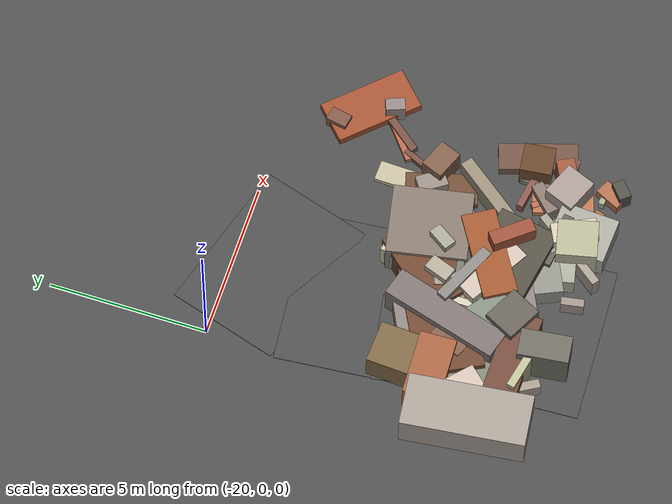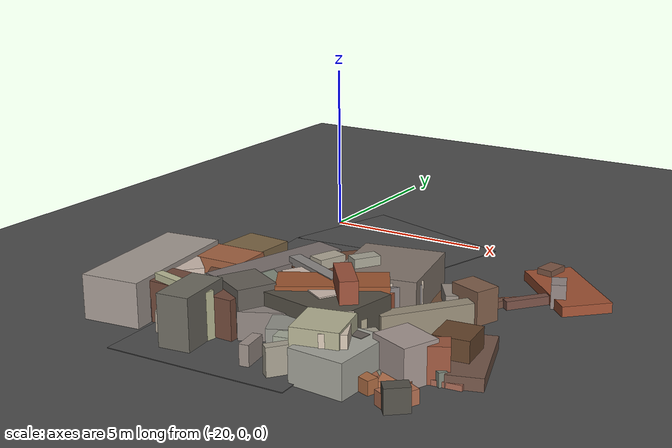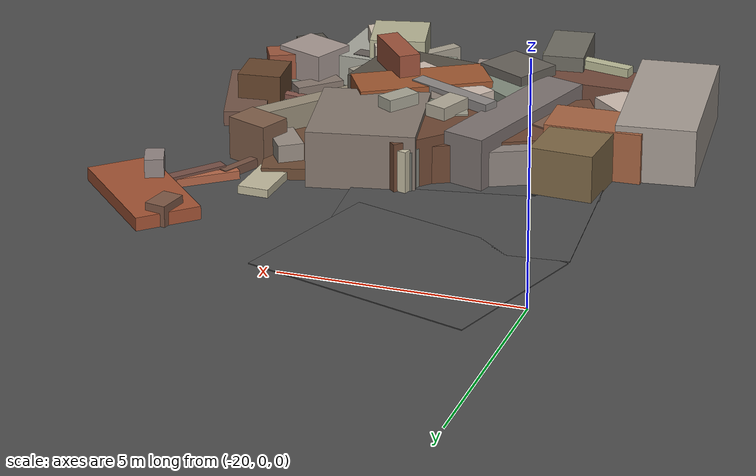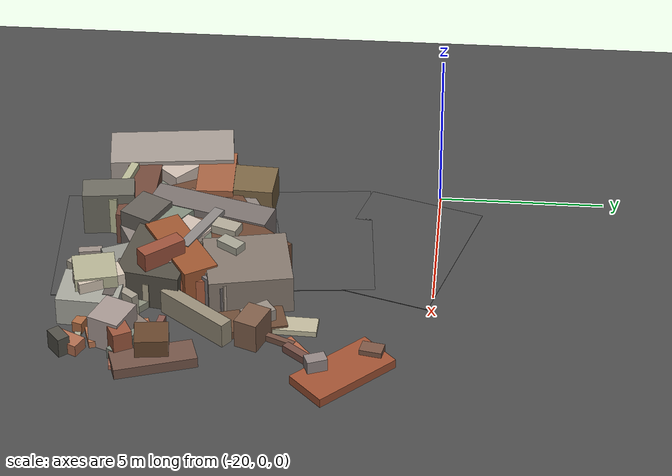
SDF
<sdf version="1.6">
 <world name="navitas_arena">
  <model name="ground_plane">
   <static>true</static>
   <link name="link">
    <collision name="collision">
     <geometry><plane><normal>0 0 1</normal><size>400 400</size></plane></geometry>
     <surface><friction><ode><mu>0.800</mu><mu2>0.800</mu2></ode></friction></surface>
    </collision>
    <visual name="visual">
     <cast_shadows>false</cast_shadows>
     <geometry><plane><normal>0 0 1</normal><size>400 400</size></plane></geometry>
     <material>
      <specular>0.04 0.04 0.04 1</specular>
      <script>
       <uri>file://media/materials/scripts/navitas_asphalt.material</uri>
       <name>Navitas/RealArenaAsphalt</name>
      </script>
     </material>
    </visual>
   </link>
  </model>
  <model name="road_orta_1_7">
   <static>true</static>
   <pose>-16.860 -9.460 0.040 0 0 1.612</pose>
   <link name="link">
    <collision name="col"><geometry><box><size>3.822 5.000 0.020</size></box></geometry></collision>
    <visual name="vis">
     <geometry><box><size>3.822 5.000 0.020</size></box></geometry>
     <material>
      <specular>0.04 0.04 0.04 1</specular>
      <script>
       <uri>file://media/materials/scripts/navitas_asphalt.material</uri>
       <name>Navitas/RealArenaAsphalt</name>
      </script>
     </material>
    </visual>
   </link>
  </model>
  <model name="road_orta_1_8">
   <static>true</static>
   <pose>-17.165 -6.600 0.040 0 0 1.744</pose>
   <link name="link">
    <collision name="col"><geometry><box><size>3.742 5.000 0.020</size></box></geometry></collision>
    <visual name="vis">
     <geometry><box><size>3.742 5.000 0.020</size></box></geometry>
     <material>
      <specular>0.04 0.04 0.04 1</specular>
      <script>
       <uri>file://media/materials/scripts/navitas_asphalt.material</uri>
       <name>Navitas/RealArenaAsphalt</name>
      </script>
     </material>
    </visual>
   </link>
  </model>
  <model name="road_orta_1_9">
   <static>true</static>
   <pose>-17.538 -3.800 0.040 0 0 1.662</pose>
   <link name="link">
    <collision name="col"><geometry><box><size>3.712 5.000 0.020</size></box></geometry></collision>
    <visual name="vis">
     <geometry><box><size>3.712 5.000 0.020</size></box></geometry>
     <material>
      <specular>0.04 0.04 0.04 1</specular>
      <script>
       <uri>file://media/materials/scripts/navitas_asphalt.material</uri>
       <name>Navitas/RealArenaAsphalt</name>
      </script>
     </material>
    </visual>
   </link>
  </model>
  <model name="road_orta_1_10">
   <static>true</static>
   <pose>-17.275 -1.117 0.040 0 0 1.275</pose>
   <link name="link">
    <collision name="col"><geometry><box><size>3.584 5.000 0.020</size></box></geometry></collision>
    <visual name="vis">
     <geometry><box><size>3.584 5.000 0.020</size></box></geometry>
     <material>
      <specular>0.04 0.04 0.04 1</specular>
      <script>
       <uri>file://media/materials/scripts/navitas_asphalt.material</uri>
       <name>Navitas/RealArenaAsphalt</name>
      </script>
     </material>
    </visual>
   </link>
  </model>
  <model name="blk_orta_1_0_0">
   <static>true</static>
   <pose>-17.702 -7.231 0.000 0 0 0</pose>
   <link name="link">
    <collision name="col_0">
     <pose>1.902 -0.352 0.601 0.000 0.000 -0.529</pose>
     <geometry><box><size>2.209 1.005 1.203</size></box></geometry>
    </collision>
    <visual name="vis_0">
     <pose>1.902 -0.352 0.601 0.000 0.000 -0.529</pose>
     <geometry><box><size>2.209 1.005 1.203</size></box></geometry>
     <material>
      <ambient>0.75 0.68 0.64 1</ambient>
      <diffuse>0.81 0.74 0.69 1</diffuse>
      <specular>0.05 0.05 0.045 1</specular>
     </material>
    </visual>
    <collision name="col_1">
     <pose>0.239 -0.017 0.309 0.000 0.000 1.440</pose>
     <geometry><box><size>0.358 0.312 0.618</size></box></geometry>
    </collision>
    <visual name="vis_1">
     <pose>0.239 -0.017 0.309 0.000 0.000 1.440</pose>
     <geometry><box><size>0.358 0.312 0.618</size></box></geometry>
     <material>
      <ambient>0.63 0.40 0.30 1</ambient>
      <diffuse>0.68 0.43 0.32 1</diffuse>
      <specular>0.05 0.05 0.045 1</specular>
     </material>
    </visual>
    <collision name="col_2">
     <pose>0.584 -0.871 0.565 0.000 0.000 -0.632</pose>
     <geometry><box><size>1.253 0.995 1.130</size></box></geometry>
    </collision>
    <visual name="vis_2">
     <pose>0.584 -0.871 0.565 0.000 0.000 -0.632</pose>
     <geometry><box><size>1.253 0.995 1.130</size></box></geometry>
     <material>
      <ambient>0.48 0.51 0.46 1</ambient>
      <diffuse>0.51 0.55 0.49 1</diffuse>
      <specular>0.05 0.05 0.045 1</specular>
     </material>
    </visual>
    <collision name="col_3">
     <pose>1.136 0.771 0.558 0.000 0.000 1.915</pose>
     <geometry><box><size>0.677 0.350 1.116</size></box></geometry>
    </collision>
    <visual name="vis_3">
     <pose>1.136 0.771 0.558 0.000 0.000 1.915</pose>
     <geometry><box><size>0.677 0.350 1.116</size></box></geometry>
     <material>
      <ambient>0.56 0.56 0.50 1</ambient>
      <diffuse>0.61 0.60 0.54 1</diffuse>
      <specular>0.05 0.05 0.045 1</specular>
     </material>
    </visual>
    <collision name="col_4">
     <pose>-1.515 1.155 0.526 0.000 0.000 1.513</pose>
     <geometry><box><size>2.084 1.339 1.051</size></box></geometry>
    </collision>
    <visual name="vis_4">
     <pose>-1.515 1.155 0.526 0.000 0.000 1.513</pose>
     <geometry><box><size>2.084 1.339 1.051</size></box></geometry>
     <material>
      <ambient>0.45 0.37 0.25 1</ambient>
      <diffuse>0.49 0.40 0.27 1</diffuse>
      <specular>0.05 0.05 0.045 1</specular>
     </material>
    </visual>
    <collision name="col_5">
     <pose>0.676 -0.555 0.448 0.000 0.000 1.570</pose>
     <geometry><box><size>2.831 0.231 0.897</size></box></geometry>
    </collision>
    <visual name="vis_5">
     <pose>0.676 -0.555 0.448 0.000 0.000 1.570</pose>
     <geometry><box><size>2.831 0.231 0.897</size></box></geometry>
     <material>
      <ambient>0.75 0.73 0.66 1</ambient>
      <diffuse>0.81 0.79 0.71 1</diffuse>
      <specular>0.05 0.05 0.045 1</specular>
     </material>
    </visual>
    <collision name="col_6">
     <pose>0.834 1.425 0.448 0.000 0.000 1.750</pose>
     <geometry><box><size>1.007 1.122 0.895</size></box></geometry>
    </collision>
    <visual name="vis_6">
     <pose>0.834 1.425 0.448 0.000 0.000 1.750</pose>
     <geometry><box><size>1.007 1.122 0.895</size></box></geometry>
     <material>
      <ambient>0.54 0.51 0.48 1</ambient>
      <diffuse>0.58 0.55 0.52 1</diffuse>
      <specular>0.05 0.05 0.045 1</specular>
     </material>
    </visual>
    <collision name="col_7">
     <pose>-1.273 0.865 0.290 0.000 0.000 -0.264</pose>
     <geometry><box><size>0.560 0.477 0.581</size></box></geometry>
    </collision>
    <visual name="vis_7">
     <pose>-1.273 0.865 0.290 0.000 0.000 -0.264</pose>
     <geometry><box><size>0.560 0.477 0.581</size></box></geometry>
     <material>
      <ambient>0.44 0.45 0.40 1</ambient>
      <diffuse>0.48 0.48 0.43 1</diffuse>
      <specular>0.05 0.05 0.045 1</specular>
     </material>
    </visual>
    <collision name="col_8">
     <pose>-1.736 0.360 0.541 0.000 0.000 0.033</pose>
     <geometry><box><size>2.044 1.137 1.082</size></box></geometry>
    </collision>
    <visual name="vis_8">
     <pose>-1.736 0.360 0.541 0.000 0.000 0.033</pose>
     <geometry><box><size>2.044 1.137 1.082</size></box></geometry>
     <material>
      <ambient>0.60 0.36 0.24 1</ambient>
      <diffuse>0.65 0.39 0.26 1</diffuse>
      <specular>0.05 0.05 0.045 1</specular>
     </material>
    </visual>
    <collision name="col_9">
     <pose>1.491 -0.687 0.588 0.000 0.000 -0.025</pose>
     <geometry><box><size>0.366 0.255 1.176</size></box></geometry>
    </collision>
    <visual name="vis_9">
     <pose>1.491 -0.687 0.588 0.000 0.000 -0.025</pose>
     <geometry><box><size>0.366 0.255 1.176</size></box></geometry>
     <material>
      <ambient>0.72 0.71 0.60 1</ambient>
      <diffuse>0.77 0.76 0.65 1</diffuse>
      <specular>0.05 0.05 0.045 1</specular>
     </material>
    </visual>
   </link>
  </model>
  <model name="blk_orta_1_0_1">
   <static>true</static>
   <pose>-14.191 -9.171 0.000 0 0 0</pose>
   <link name="link">
    <collision name="col_0">
     <pose>-0.129 0.159 0.414 0.000 0.000 1.249</pose>
     <geometry><box><size>1.631 0.301 0.828</size></box></geometry>
    </collision>
    <visual name="vis_0">
     <pose>-0.129 0.159 0.414 0.000 0.000 1.249</pose>
     <geometry><box><size>1.631 0.301 0.828</size></box></geometry>
     <material>
      <ambient>0.66 0.62 0.53 1</ambient>
      <diffuse>0.71 0.67 0.57 1</diffuse>
      <specular>0.05 0.05 0.045 1</specular>
     </material>
    </visual>
    <collision name="col_1">
     <pose>-0.093 -0.523 0.391 0.000 0.000 0.912</pose>
     <geometry><box><size>2.744 0.262 0.781</size></box></geometry>
    </collision>
    <visual name="vis_1">
     <pose>-0.093 -0.523 0.391 0.000 0.000 0.912</pose>
     <geometry><box><size>2.744 0.262 0.781</size></box></geometry>
     <material>
      <ambient>0.60 0.57 0.52 1</ambient>
      <diffuse>0.65 0.62 0.56 1</diffuse>
      <specular>0.05 0.05 0.045 1</specular>
     </material>
    </visual>
    <collision name="col_2">
     <pose>0.017 -0.090 0.455 0.000 0.000 3.004</pose>
     <geometry><box><size>1.782 0.326 0.910</size></box></geometry>
    </collision>
    <visual name="vis_2">
     <pose>0.017 -0.090 0.455 0.000 0.000 3.004</pose>
     <geometry><box><size>1.782 0.326 0.910</size></box></geometry>
     <material>
      <ambient>0.37 0.34 0.33 1</ambient>
      <diffuse>0.40 0.37 0.35 1</diffuse>
      <specular>0.05 0.05 0.045 1</specular>
     </material>
    </visual>
    <collision name="col_3">
     <pose>0.327 -0.537 0.621 0.000 0.000 2.023</pose>
     <geometry><box><size>1.399 0.663 1.242</size></box></geometry>
    </collision>
    <visual name="vis_3">
     <pose>0.327 -0.537 0.621 0.000 0.000 2.023</pose>
     <geometry><box><size>1.399 0.663 1.242</size></box></geometry>
     <material>
      <ambient>0.77 0.72 0.65 1</ambient>
      <diffuse>0.83 0.77 0.70 1</diffuse>
      <specular>0.05 0.05 0.045 1</specular>
     </material>
    </visual>
    <collision name="col_4">
     <pose>0.522 -0.759 0.448 0.000 0.000 1.510</pose>
     <geometry><box><size>1.819 1.485 0.896</size></box></geometry>
    </collision>
    <visual name="vis_4">
     <pose>0.522 -0.759 0.448 0.000 0.000 1.510</pose>
     <geometry><box><size>1.819 1.485 0.896</size></box></geometry>
     <material>
      <ambient>0.60 0.60 0.57 1</ambient>
      <diffuse>0.65 0.65 0.61 1</diffuse>
      <specular>0.05 0.05 0.045 1</specular>
     </material>
    </visual>
    <collision name="col_5">
     <pose>-0.719 -0.065 0.373 0.000 0.000 1.782</pose>
     <geometry><box><size>1.632 1.206 0.747</size></box></geometry>
    </collision>
    <visual name="vis_5">
     <pose>-0.719 -0.065 0.373 0.000 0.000 1.782</pose>
     <geometry><box><size>1.632 1.206 0.747</size></box></geometry>
     <material>
      <ambient>0.60 0.62 0.56 1</ambient>
      <diffuse>0.65 0.67 0.60 1</diffuse>
      <specular>0.05 0.05 0.045 1</specular>
     </material>
    </visual>
    <collision name="col_6">
     <pose>0.074 -0.698 0.654 0.000 0.000 1.799</pose>
     <geometry><box><size>1.248 1.201 1.307</size></box></geometry>
    </collision>
    <visual name="vis_6">
     <pose>0.074 -0.698 0.654 0.000 0.000 1.799</pose>
     <geometry><box><size>1.248 1.201 1.307</size></box></geometry>
     <material>
      <ambient>0.66 0.65 0.54 1</ambient>
      <diffuse>0.71 0.70 0.58 1</diffuse>
      <specular>0.05 0.05 0.045 1</specular>
     </material>
    </visual>
    <collision name="col_7">
     <pose>-0.320 -0.185 0.455 0.000 0.000 0.828</pose>
     <geometry><box><size>0.215 0.387 0.910</size></box></geometry>
    </collision>
    <visual name="vis_7">
     <pose>-0.320 -0.185 0.455 0.000 0.000 0.828</pose>
     <geometry><box><size>0.215 0.387 0.910</size></box></geometry>
     <material>
      <ambient>0.56 0.52 0.46 1</ambient>
      <diffuse>0.60 0.56 0.50 1</diffuse>
      <specular>0.05 0.05 0.045 1</specular>
     </material>
    </visual>
   </link>
  </model>
  <model name="blk_orta_1_0_2">
   <static>true</static>
   <pose>-19.351 -8.462 0.000 0 0 0</pose>
   <link name="link">
    <collision name="col_0">
     <pose>0.918 -1.126 0.651 0.000 0.000 2.930</pose>
     <geometry><box><size>2.033 0.245 1.302</size></box></geometry>
    </collision>
    <visual name="vis_0">
     <pose>0.918 -1.126 0.651 0.000 0.000 2.930</pose>
     <geometry><box><size>2.033 0.245 1.302</size></box></geometry>
     <material>
      <ambient>0.67 0.67 0.55 1</ambient>
      <diffuse>0.73 0.73 0.59 1</diffuse>
      <specular>0.05 0.05 0.045 1</specular>
     </material>
    </visual>
    <collision name="col_1">
     <pose>-0.184 -0.332 0.304 0.000 0.000 2.102</pose>
     <geometry><box><size>3.076 0.279 0.608</size></box></geometry>
    </collision>
    <visual name="vis_1">
     <pose>-0.184 -0.332 0.304 0.000 0.000 2.102</pose>
     <geometry><box><size>3.076 0.279 0.608</size></box></geometry>
     <material>
      <ambient>0.59 0.56 0.50 1</ambient>
      <diffuse>0.64 0.60 0.54 1</diffuse>
      <specular>0.05 0.05 0.045 1</specular>
     </material>
    </visual>
    <collision name="col_2">
     <pose>-0.480 0.840 0.437 0.000 0.000 1.129</pose>
     <geometry><box><size>1.689 0.182 0.874</size></box></geometry>
    </collision>
    <visual name="vis_2">
     <pose>-0.480 0.840 0.437 0.000 0.000 1.129</pose>
     <geometry><box><size>1.689 0.182 0.874</size></box></geometry>
     <material>
      <ambient>0.33 0.36 0.31 1</ambient>
      <diffuse>0.36 0.39 0.33 1</diffuse>
      <specular>0.05 0.05 0.045 1</specular>
     </material>
    </visual>
    <collision name="col_3">
     <pose>-1.167 0.096 0.608 0.000 0.000 1.687</pose>
     <geometry><box><size>3.805 1.659 1.215</size></box></geometry>
    </collision>
    <visual name="vis_3">
     <pose>-1.167 0.096 0.608 0.000 0.000 1.687</pose>
     <geometry><box><size>3.805 1.659 1.215</size></box></geometry>
     <material>
      <ambient>0.60 0.57 0.54 1</ambient>
      <diffuse>0.65 0.61 0.58 1</diffuse>
      <specular>0.05 0.05 0.045 1</specular>
     </material>
    </visual>
    <collision name="col_4">
     <pose>0.437 0.788 0.280 0.000 0.000 2.689</pose>
     <geometry><box><size>3.668 1.146 0.560</size></box></geometry>
    </collision>
    <visual name="vis_4">
     <pose>0.437 0.788 0.280 0.000 0.000 2.689</pose>
     <geometry><box><size>3.668 1.146 0.560</size></box></geometry>
     <material>
      <ambient>0.77 0.69 0.63 1</ambient>
      <diffuse>0.84 0.74 0.68 1</diffuse>
      <specular>0.05 0.05 0.045 1</specular>
     </material>
    </visual>
    <collision name="col_5">
     <pose>-0.952 -0.801 0.340 0.000 0.000 0.910</pose>
     <geometry><box><size>1.482 0.296 0.680</size></box></geometry>
    </collision>
    <visual name="vis_5">
     <pose>-0.952 -0.801 0.340 0.000 0.000 0.910</pose>
     <geometry><box><size>1.482 0.296 0.680</size></box></geometry>
     <material>
      <ambient>0.41 0.43 0.36 1</ambient>
      <diffuse>0.45 0.47 0.39 1</diffuse>
      <specular>0.05 0.05 0.045 1</specular>
     </material>
    </visual>
    <collision name="col_6">
     <pose>0.909 -0.646 0.555 0.000 0.000 3.126</pose>
     <geometry><box><size>3.006 1.035 1.109</size></box></geometry>
    </collision>
    <visual name="vis_6">
     <pose>0.909 -0.646 0.555 0.000 0.000 3.126</pose>
     <geometry><box><size>3.006 1.035 1.109</size></box></geometry>
     <material>
      <ambient>0.42 0.27 0.21 1</ambient>
      <diffuse>0.45 0.29 0.23 1</diffuse>
      <specular>0.05 0.05 0.045 1</specular>
     </material>
    </visual>
    <collision name="col_7">
     <pose>-0.543 0.258 0.538 0.000 0.000 0.825</pose>
     <geometry><box><size>1.382 1.112 1.075</size></box></geometry>
    </collision>
    <visual name="vis_7">
     <pose>-0.543 0.258 0.538 0.000 0.000 0.825</pose>
     <geometry><box><size>1.382 1.112 1.075</size></box></geometry>
     <material>
      <ambient>0.75 0.69 0.64 1</ambient>
      <diffuse>0.81 0.74 0.69 1</diffuse>
      <specular>0.05 0.05 0.045 1</specular>
     </material>
    </visual>
    <collision name="col_8">
     <pose>-1.233 0.626 0.371 0.000 0.000 2.192</pose>
     <geometry><box><size>0.530 0.528 0.741</size></box></geometry>
    </collision>
    <visual name="vis_8">
     <pose>-1.233 0.626 0.371 0.000 0.000 2.192</pose>
     <geometry><box><size>0.530 0.528 0.741</size></box></geometry>
     <material>
      <ambient>0.45 0.42 0.40 1</ambient>
      <diffuse>0.49 0.45 0.43 1</diffuse>
      <specular>0.05 0.05 0.045 1</specular>
     </material>
    </visual>
    <collision name="col_9">
     <pose>0.133 0.280 0.322 0.000 0.000 3.243</pose>
     <geometry><box><size>1.597 1.748 0.643</size></box></geometry>
    </collision>
    <visual name="vis_9">
     <pose>0.133 0.280 0.322 0.000 0.000 3.243</pose>
     <geometry><box><size>1.597 1.748 0.643</size></box></geometry>
     <material>
      <ambient>0.47 0.48 0.44 1</ambient>
      <diffuse>0.50 0.52 0.47 1</diffuse>
      <specular>0.05 0.05 0.045 1</specular>
     </material>
    </visual>
   </link>
  </model>
  <model name="blk_orta_1_0_3">
   <static>true</static>
   <pose>-15.358 -6.407 0.000 0 0 0</pose>
   <link name="link">
    <collision name="col_0">
     <pose>-0.928 -0.560 0.650 0.000 0.000 2.710</pose>
     <geometry><box><size>2.076 0.338 1.300</size></box></geometry>
    </collision>
    <visual name="vis_0">
     <pose>-0.928 -0.560 0.650 0.000 0.000 2.710</pose>
     <geometry><box><size>2.076 0.338 1.300</size></box></geometry>
     <material>
      <ambient>0.51 0.49 0.49 1</ambient>
      <diffuse>0.55 0.53 0.52 1</diffuse>
      <specular>0.05 0.05 0.045 1</specular>
     </material>
    </visual>
    <collision name="col_1">
     <pose>-1.008 -0.137 0.442 0.000 0.000 1.292</pose>
     <geometry><box><size>4.182 0.875 0.883</size></box></geometry>
    </collision>
    <visual name="vis_1">
     <pose>-1.008 -0.137 0.442 0.000 0.000 1.292</pose>
     <geometry><box><size>4.182 0.875 0.883</size></box></geometry>
     <material>
      <ambient>0.52 0.53 0.49 1</ambient>
      <diffuse>0.56 0.57 0.53 1</diffuse>
      <specular>0.05 0.05 0.045 1</specular>
     </material>
    </visual>
    <collision name="col_2">
     <pose>-0.046 0.410 0.732 0.000 0.000 0.982</pose>
     <geometry><box><size>0.743 0.401 1.464</size></box></geometry>
    </collision>
    <visual name="vis_2">
     <pose>-0.046 0.410 0.732 0.000 0.000 0.982</pose>
     <geometry><box><size>0.743 0.401 1.464</size></box></geometry>
     <material>
      <ambient>0.60 0.60 0.54 1</ambient>
      <diffuse>0.65 0.64 0.58 1</diffuse>
      <specular>0.05 0.05 0.045 1</specular>
     </material>
    </visual>
    <collision name="col_3">
     <pose>-0.860 0.615 0.542 0.000 0.000 0.846</pose>
     <geometry><box><size>2.727 1.572 1.085</size></box></geometry>
    </collision>
    <visual name="vis_3">
     <pose>-0.860 0.615 0.542 0.000 0.000 0.846</pose>
     <geometry><box><size>2.727 1.572 1.085</size></box></geometry>
     <material>
      <ambient>0.40 0.26 0.19 1</ambient>
      <diffuse>0.43 0.28 0.20 1</diffuse>
      <specular>0.05 0.05 0.045 1</specular>
     </material>
    </visual>
    <collision name="col_4">
     <pose>0.083 -0.329 0.517 0.000 0.000 0.830</pose>
     <geometry><box><size>3.140 1.588 1.034</size></box></geometry>
    </collision>
    <visual name="vis_4">
     <pose>0.083 -0.329 0.517 0.000 0.000 0.830</pose>
     <geometry><box><size>3.140 1.588 1.034</size></box></geometry>
     <material>
      <ambient>0.48 0.45 0.45 1</ambient>
      <diffuse>0.52 0.49 0.49 1</diffuse>
      <specular>0.05 0.05 0.045 1</specular>
     </material>
    </visual>
    <collision name="col_5">
     <pose>-0.129 -0.252 0.383 0.000 0.000 2.476</pose>
     <geometry><box><size>0.487 0.387 0.766</size></box></geometry>
    </collision>
    <visual name="vis_5">
     <pose>-0.129 -0.252 0.383 0.000 0.000 2.476</pose>
     <geometry><box><size>0.487 0.387 0.766</size></box></geometry>
     <material>
      <ambient>0.60 0.39 0.28 1</ambient>
      <diffuse>0.65 0.43 0.30 1</diffuse>
      <specular>0.05 0.05 0.045 1</specular>
     </material>
    </visual>
    <collision name="col_6">
     <pose>0.160 -0.158 0.370 0.000 0.000 0.956</pose>
     <geometry><box><size>0.557 0.393 0.739</size></box></geometry>
    </collision>
    <visual name="vis_6">
     <pose>0.160 -0.158 0.370 0.000 0.000 0.956</pose>
     <geometry><box><size>0.557 0.393 0.739</size></box></geometry>
     <material>
      <ambient>0.41 0.40 0.37 1</ambient>
      <diffuse>0.45 0.43 0.40 1</diffuse>
      <specular>0.05 0.05 0.045 1</specular>
     </material>
    </visual>
    <collision name="col_7">
     <pose>0.416 0.944 0.605 0.000 0.000 1.763</pose>
     <geometry><box><size>2.482 2.252 1.210</size></box></geometry>
    </collision>
    <visual name="vis_7">
     <pose>0.416 0.944 0.605 0.000 0.000 1.763</pose>
     <geometry><box><size>2.482 2.252 1.210</size></box></geometry>
     <material>
      <ambient>0.48 0.44 0.39 1</ambient>
      <diffuse>0.52 0.47 0.43 1</diffuse>
      <specular>0.05 0.05 0.045 1</specular>
     </material>
    </visual>
    <collision name="col_8">
     <pose>0.761 -0.321 0.558 0.000 0.000 0.785</pose>
     <geometry><box><size>2.351 0.346 1.116</size></box></geometry>
    </collision>
    <visual name="vis_8">
     <pose>0.761 -0.321 0.558 0.000 0.000 0.785</pose>
     <geometry><box><size>2.351 0.346 1.116</size></box></geometry>
     <material>
      <ambient>0.72 0.65 0.60 1</ambient>
      <diffuse>0.77 0.71 0.65 1</diffuse>
      <specular>0.05 0.05 0.045 1</specular>
     </material>
    </visual>
   </link>
  </model>
  <model name="blk_orta_1_0_4">
   <static>true</static>
   <pose>-16.954 -6.418 0.000 0 0 0</pose>
   <link name="link">
    <collision name="col_0">
     <pose>-0.959 -0.514 0.303 0.000 0.000 2.786</pose>
     <geometry><box><size>1.052 1.030 0.606</size></box></geometry>
    </collision>
    <visual name="vis_0">
     <pose>-0.959 -0.514 0.303 0.000 0.000 2.786</pose>
     <geometry><box><size>1.052 1.030 0.606</size></box></geometry>
     <material>
      <ambient>0.28 0.30 0.28 1</ambient>
      <diffuse>0.30 0.32 0.30 1</diffuse>
      <specular>0.05 0.05 0.045 1</specular>
     </material>
    </visual>
    <collision name="col_1">
     <pose>1.160 0.028 0.519 0.000 0.000 2.332</pose>
     <geometry><box><size>2.219 1.987 1.037</size></box></geometry>
    </collision>
    <visual name="vis_1">
     <pose>1.160 0.028 0.519 0.000 0.000 2.332</pose>
     <geometry><box><size>2.219 1.987 1.037</size></box></geometry>
     <material>
      <ambient>0.32 0.28 0.25 1</ambient>
      <diffuse>0.35 0.31 0.26 1</diffuse>
      <specular>0.05 0.05 0.045 1</specular>
     </material>
    </visual>
    <collision name="col_2">
     <pose>-0.796 -0.978 0.448 0.000 0.000 2.741</pose>
     <geometry><box><size>1.818 1.111 0.895</size></box></geometry>
    </collision>
    <visual name="vis_2">
     <pose>-0.796 -0.978 0.448 0.000 0.000 2.741</pose>
     <geometry><box><size>1.818 1.111 0.895</size></box></geometry>
     <material>
      <ambient>0.47 0.34 0.28 1</ambient>
      <diffuse>0.50 0.37 0.30 1</diffuse>
      <specular>0.05 0.05 0.045 1</specular>
     </material>
    </visual>
    <collision name="col_3">
     <pose>-0.766 -0.623 0.348 0.000 0.000 2.443</pose>
     <geometry><box><size>0.307 0.304 0.695</size></box></geometry>
    </collision>
    <visual name="vis_3">
     <pose>-0.766 -0.623 0.348 0.000 0.000 2.443</pose>
     <geometry><box><size>0.307 0.304 0.695</size></box></geometry>
     <material>
      <ambient>0.39 0.27 0.22 1</ambient>
      <diffuse>0.42 0.29 0.23 1</diffuse>
      <specular>0.05 0.05 0.045 1</specular>
     </material>
    </visual>
    <collision name="col_4">
     <pose>-0.435 -0.798 0.430 0.000 0.000 1.401</pose>
     <geometry><box><size>1.958 0.335 0.860</size></box></geometry>
    </collision>
    <visual name="vis_4">
     <pose>-0.435 -0.798 0.430 0.000 0.000 1.401</pose>
     <geometry><box><size>1.958 0.335 0.860</size></box></geometry>
     <material>
      <ambient>0.60 0.33 0.21 1</ambient>
      <diffuse>0.64 0.36 0.23 1</diffuse>
      <specular>0.05 0.05 0.045 1</specular>
     </material>
    </visual>
    <collision name="col_5">
     <pose>-0.698 -0.396 0.576 0.000 0.000 1.283</pose>
     <geometry><box><size>3.782 0.911 1.151</size></box></geometry>
    </collision>
    <visual name="vis_5">
     <pose>-0.698 -0.396 0.576 0.000 0.000 1.283</pose>
     <geometry><box><size>3.782 0.911 1.151</size></box></geometry>
     <material>
      <ambient>0.45 0.41 0.41 1</ambient>
      <diffuse>0.49 0.45 0.44 1</diffuse>
      <specular>0.05 0.05 0.045 1</specular>
     </material>
    </visual>
    <collision name="col_6">
     <pose>-0.556 -0.177 0.433 0.000 0.000 3.620</pose>
     <geometry><box><size>3.995 2.046 0.866</size></box></geometry>
    </collision>
    <visual name="vis_6">
     <pose>-0.556 -0.177 0.433 0.000 0.000 3.620</pose>
     <geometry><box><size>3.995 2.046 0.866</size></box></geometry>
     <material>
      <ambient>0.40 0.26 0.18 1</ambient>
      <diffuse>0.43 0.28 0.20 1</diffuse>
      <specular>0.05 0.05 0.045 1</specular>
     </material>
    </visual>
    <collision name="col_7">
     <pose>0.604 0.923 0.470 0.000 0.000 1.323</pose>
     <geometry><box><size>2.487 0.194 0.940</size></box></geometry>
    </collision>
    <visual name="vis_7">
     <pose>0.604 0.923 0.470 0.000 0.000 1.323</pose>
     <geometry><box><size>2.487 0.194 0.940</size></box></geometry>
     <material>
      <ambient>0.71 0.68 0.59 1</ambient>
      <diffuse>0.77 0.74 0.64 1</diffuse>
      <specular>0.05 0.05 0.045 1</specular>
     </material>
    </visual>
    <collision name="col_8">
     <pose>0.574 0.193 0.680 0.000 0.000 1.214</pose>
     <geometry><box><size>0.793 0.482 1.360</size></box></geometry>
    </collision>
    <visual name="vis_8">
     <pose>0.574 0.193 0.680 0.000 0.000 1.214</pose>
     <geometry><box><size>0.793 0.482 1.360</size></box></geometry>
     <material>
      <ambient>0.64 0.62 0.55 1</ambient>
      <diffuse>0.69 0.66 0.59 1</diffuse>
      <specular>0.05 0.05 0.045 1</specular>
     </material>
    </visual>
    <collision name="col_9">
     <pose>-0.133 -0.829 0.401 0.000 0.000 2.022</pose>
     <geometry><box><size>4.276 1.581 0.803</size></box></geometry>
    </collision>
    <visual name="vis_9">
     <pose>-0.133 -0.829 0.401 0.000 0.000 2.022</pose>
     <geometry><box><size>4.276 1.581 0.803</size></box></geometry>
     <material>
      <ambient>0.51 0.47 0.45 1</ambient>
      <diffuse>0.55 0.51 0.49 1</diffuse>
      <specular>0.05 0.05 0.045 1</specular>
     </material>
    </visual>
   </link>
  </model>
  <model name="blk_orta_1_0_5">
   <static>true</static>
   <pose>-16.873 -8.823 0.000 0 0 0</pose>
   <link name="link">
    <collision name="col_0">
     <pose>-0.509 1.679 0.395 0.000 0.000 1.006</pose>
     <geometry><box><size>1.584 0.192 0.790</size></box></geometry>
    </collision>
    <visual name="vis_0">
     <pose>-0.509 1.679 0.395 0.000 0.000 1.006</pose>
     <geometry><box><size>1.584 0.192 0.790</size></box></geometry>
     <material>
      <ambient>0.47 0.43 0.43 1</ambient>
      <diffuse>0.51 0.46 0.46 1</diffuse>
      <specular>0.05 0.05 0.045 1</specular>
     </material>
    </visual>
    <collision name="col_1">
     <pose>0.996 -1.456 0.297 0.000 0.000 1.739</pose>
     <geometry><box><size>0.703 0.257 0.593</size></box></geometry>
    </collision>
    <visual name="vis_1">
     <pose>0.996 -1.456 0.297 0.000 0.000 1.739</pose>
     <geometry><box><size>0.703 0.257 0.593</size></box></geometry>
     <material>
      <ambient>0.56 0.52 0.49 1</ambient>
      <diffuse>0.61 0.56 0.53 1</diffuse>
      <specular>0.05 0.05 0.045 1</specular>
     </material>
    </visual>
    <collision name="col_2">
     <pose>-1.175 1.374 0.339 0.000 0.000 2.919</pose>
     <geometry><box><size>1.186 0.948 0.678</size></box></geometry>
    </collision>
    <visual name="vis_2">
     <pose>-1.175 1.374 0.339 0.000 0.000 2.919</pose>
     <geometry><box><size>1.186 0.948 0.678</size></box></geometry>
     <material>
      <ambient>0.48 0.33 0.30 1</ambient>
      <diffuse>0.52 0.35 0.32 1</diffuse>
      <specular>0.05 0.05 0.045 1</specular>
     </material>
    </visual>
    <collision name="col_3">
     <pose>-1.025 -1.160 0.715 0.000 0.000 1.691</pose>
     <geometry><box><size>1.569 0.874 1.431</size></box></geometry>
    </collision>
    <visual name="vis_3">
     <pose>-1.025 -1.160 0.715 0.000 0.000 1.691</pose>
     <geometry><box><size>1.569 0.874 1.431</size></box></geometry>
     <material>
      <ambient>0.40 0.38 0.36 1</ambient>
      <diffuse>0.43 0.42 0.38 1</diffuse>
      <specular>0.05 0.05 0.045 1</specular>
     </material>
    </visual>
    <collision name="col_4">
     <pose>-0.266 0.083 0.668 0.000 0.000 2.662</pose>
     <geometry><box><size>1.203 1.046 1.335</size></box></geometry>
    </collision>
    <visual name="vis_4">
     <pose>-0.266 0.083 0.668 0.000 0.000 2.662</pose>
     <geometry><box><size>1.203 1.046 1.335</size></box></geometry>
     <material>
      <ambient>0.37 0.35 0.33 1</ambient>
      <diffuse>0.40 0.38 0.35 1</diffuse>
      <specular>0.05 0.05 0.045 1</specular>
     </material>
    </visual>
    <collision name="col_5">
     <pose>1.519 -0.310 0.383 0.000 0.000 3.572</pose>
     <geometry><box><size>1.306 1.177 0.765</size></box></geometry>
    </collision>
    <visual name="vis_5">
     <pose>1.519 -0.310 0.383 0.000 0.000 3.572</pose>
     <geometry><box><size>1.306 1.177 0.765</size></box></geometry>
     <material>
      <ambient>0.53 0.53 0.50 1</ambient>
      <diffuse>0.57 0.57 0.54 1</diffuse>
      <specular>0.05 0.05 0.045 1</specular>
     </material>
    </visual>
    <collision name="col_6">
     <pose>1.706 0.698 0.584 0.000 0.000 2.966</pose>
     <geometry><box><size>2.456 1.919 1.169</size></box></geometry>
    </collision>
    <visual name="vis_6">
     <pose>1.706 0.698 0.584 0.000 0.000 2.966</pose>
     <geometry><box><size>2.456 1.919 1.169</size></box></geometry>
     <material>
      <ambient>0.30 0.29 0.25 1</ambient>
      <diffuse>0.33 0.31 0.27 1</diffuse>
      <specular>0.05 0.05 0.045 1</specular>
     </material>
    </visual>
    <collision name="col_7">
     <pose>-0.821 0.450 0.509 0.000 0.000 1.464</pose>
     <geometry><box><size>0.478 0.388 1.017</size></box></geometry>
    </collision>
    <visual name="vis_7">
     <pose>-0.821 0.450 0.509 0.000 0.000 1.464</pose>
     <geometry><box><size>0.478 0.388 1.017</size></box></geometry>
     <material>
      <ambient>0.29 0.28 0.26 1</ambient>
      <diffuse>0.31 0.30 0.28 1</diffuse>
      <specular>0.05 0.05 0.045 1</specular>
     </material>
    </visual>
    <collision name="col_8">
     <pose>1.618 -0.611 0.343 0.000 0.000 3.051</pose>
     <geometry><box><size>0.814 0.563 0.686</size></box></geometry>
    </collision>
    <visual name="vis_8">
     <pose>1.618 -0.611 0.343 0.000 0.000 3.051</pose>
     <geometry><box><size>0.814 0.563 0.686</size></box></geometry>
     <material>
      <ambient>0.61 0.37 0.26 1</ambient>
      <diffuse>0.66 0.40 0.28 1</diffuse>
      <specular>0.05 0.05 0.045 1</specular>
     </material>
    </visual>
    <collision name="col_9">
     <pose>-1.434 0.357 0.308 0.000 0.000 3.495</pose>
     <geometry><box><size>3.661 1.302 0.615</size></box></geometry>
    </collision>
    <visual name="vis_9">
     <pose>-1.434 0.357 0.308 0.000 0.000 3.495</pose>
     <geometry><box><size>3.661 1.302 0.615</size></box></geometry>
     <material>
      <ambient>0.33 0.28 0.29 1</ambient>
      <diffuse>0.36 0.31 0.31 1</diffuse>
      <specular>0.05 0.05 0.045 1</specular>
     </material>
    </visual>
   </link>
  </model>
  <model name="blk_orta_1_0_7">
   <static>true</static>
   <pose>-14.333 -6.973 0.000 0 0 0</pose>
   <link name="link">
    <collision name="col_0">
     <pose>-1.010 0.334 0.549 0.000 0.000 0.166</pose>
     <geometry><box><size>2.159 0.217 1.098</size></box></geometry>
    </collision>
    <visual name="vis_0">
     <pose>-1.010 0.334 0.549 0.000 0.000 0.166</pose>
     <geometry><box><size>2.159 0.217 1.098</size></box></geometry>
     <material>
      <ambient>0.42 0.44 0.39 1</ambient>
      <diffuse>0.45 0.48 0.42 1</diffuse>
      <specular>0.05 0.05 0.045 1</specular>
     </material>
    </visual>
    <collision name="col_1">
     <pose>-0.721 -0.404 0.352 0.000 0.000 0.719</pose>
     <geometry><box><size>0.481 0.585 0.704</size></box></geometry>
    </collision>
    <visual name="vis_1">
     <pose>-0.721 -0.404 0.352 0.000 0.000 0.719</pose>
     <geometry><box><size>0.481 0.585 0.704</size></box></geometry>
     <material>
      <ambient>0.63 0.63 0.53 1</ambient>
      <diffuse>0.68 0.68 0.58 1</diffuse>
      <specular>0.05 0.05 0.045 1</specular>
     </material>
    </visual>
    <collision name="col_2">
     <pose>-1.070 -0.507 0.637 0.000 0.000 0.545</pose>
     <geometry><box><size>2.825 1.066 1.275</size></box></geometry>
    </collision>
    <visual name="vis_2">
     <pose>-1.070 -0.507 0.637 0.000 0.000 0.545</pose>
     <geometry><box><size>2.825 1.066 1.275</size></box></geometry>
     <material>
      <ambient>0.58 0.31 0.18 1</ambient>
      <diffuse>0.62 0.34 0.19 1</diffuse>
      <specular>0.05 0.05 0.045 1</specular>
     </material>
    </visual>
    <collision name="col_3">
     <pose>-0.390 -1.006 0.878 0.000 0.000 -0.887</pose>
     <geometry><box><size>1.376 0.458 1.756</size></box></geometry>
    </collision>
    <visual name="vis_3">
     <pose>-0.390 -1.006 0.878 0.000 0.000 -0.887</pose>
     <geometry><box><size>1.376 0.458 1.756</size></box></geometry>
     <material>
      <ambient>0.57 0.30 0.21 1</ambient>
      <diffuse>0.61 0.32 0.23 1</diffuse>
      <specular>0.05 0.05 0.045 1</specular>
     </material>
    </visual>
    <collision name="col_4">
     <pose>-0.955 -0.142 0.455 0.000 0.000 0.073</pose>
     <geometry><box><size>2.403 1.689 0.911</size></box></geometry>
    </collision>
    <visual name="vis_4">
     <pose>-0.955 -0.142 0.455 0.000 0.000 0.073</pose>
     <geometry><box><size>2.403 1.689 0.911</size></box></geometry>
     <material>
      <ambient>0.62 0.34 0.23 1</ambient>
      <diffuse>0.67 0.37 0.25 1</diffuse>
      <specular>0.05 0.05 0.045 1</specular>
     </material>
    </visual>
    <collision name="col_5">
     <pose>1.176 0.168 0.387 0.000 0.000 0.908</pose>
     <geometry><box><size>2.478 0.408 0.774</size></box></geometry>
    </collision>
    <visual name="vis_5">
     <pose>1.176 0.168 0.387 0.000 0.000 0.908</pose>
     <geometry><box><size>2.478 0.408 0.774</size></box></geometry>
     <material>
      <ambient>0.54 0.51 0.44 1</ambient>
      <diffuse>0.59 0.55 0.47 1</diffuse>
      <specular>0.05 0.05 0.045 1</specular>
     </material>
    </visual>
   </link>
  </model>
  <model name="deb_orta_76">
   <static>true</static>
   <pose>-12.236 -8.568 0.000 0 0 0</pose>
   <link name="link">
    <collision name="col_0">
     <pose>0.302 -0.215 0.183 0.000 0.000 -0.597</pose>
     <geometry><box><size>1.165 0.214 0.366</size></box></geometry>
    </collision>
    <visual name="vis_0">
     <pose>0.302 -0.215 0.183 0.000 0.000 -0.597</pose>
     <geometry><box><size>1.165 0.214 0.366</size></box></geometry>
     <material>
      <ambient>0.47 0.49 0.44 1</ambient>
      <diffuse>0.50 0.53 0.48 1</diffuse>
      <specular>0.05 0.05 0.045 1</specular>
     </material>
    </visual>
    <collision name="col_1">
     <pose>0.063 -0.572 0.072 0.000 0.000 0.105</pose>
     <geometry><box><size>2.370 0.134 0.145</size></box></geometry>
    </collision>
    <visual name="vis_1">
     <pose>0.063 -0.572 0.072 0.000 0.000 0.105</pose>
     <geometry><box><size>2.370 0.134 0.145</size></box></geometry>
     <material>
      <ambient>0.62 0.39 0.31 1</ambient>
      <diffuse>0.67 0.42 0.34 1</diffuse>
      <specular>0.05 0.05 0.045 1</specular>
     </material>
    </visual>
    <collision name="col_2">
     <pose>0.399 -0.322 0.468 0.000 0.000 -1.095</pose>
     <geometry><box><size>0.573 0.807 0.936</size></box></geometry>
    </collision>
    <visual name="vis_2">
     <pose>0.399 -0.322 0.468 0.000 0.000 -1.095</pose>
     <geometry><box><size>0.573 0.807 0.936</size></box></geometry>
     <material>
      <ambient>0.56 0.31 0.22 1</ambient>
      <diffuse>0.61 0.34 0.24 1</diffuse>
      <specular>0.05 0.05 0.045 1</specular>
     </material>
    </visual>
    <collision name="col_3">
     <pose>-0.473 0.113 0.241 0.000 0.000 0.773</pose>
     <geometry><box><size>1.059 0.383 0.481</size></box></geometry>
    </collision>
    <visual name="vis_3">
     <pose>-0.473 0.113 0.241 0.000 0.000 0.773</pose>
     <geometry><box><size>1.059 0.383 0.481</size></box></geometry>
     <material>
      <ambient>0.49 0.43 0.40 1</ambient>
      <diffuse>0.53 0.47 0.43 1</diffuse>
      <specular>0.05 0.05 0.045 1</specular>
     </material>
    </visual>
    <collision name="col_4">
     <pose>-0.062 0.648 0.176 0.000 0.000 -0.161</pose>
     <geometry><box><size>1.745 0.206 0.352</size></box></geometry>
    </collision>
    <visual name="vis_4">
     <pose>-0.062 0.648 0.176 0.000 0.000 -0.161</pose>
     <geometry><box><size>1.745 0.206 0.352</size></box></geometry>
     <material>
      <ambient>0.49 0.31 0.28 1</ambient>
      <diffuse>0.53 0.34 0.30 1</diffuse>
      <specular>0.05 0.05 0.045 1</specular>
     </material>
    </visual>
    <collision name="col_5">
     <pose>-0.163 -0.562 0.520 0.000 0.000 -0.391</pose>
     <geometry><box><size>1.135 0.989 1.039</size></box></geometry>
    </collision>
    <visual name="vis_5">
     <pose>-0.163 -0.562 0.520 0.000 0.000 -0.391</pose>
     <geometry><box><size>1.135 0.989 1.039</size></box></geometry>
     <material>
      <ambient>0.60 0.55 0.53 1</ambient>
      <diffuse>0.65 0.59 0.57 1</diffuse>
      <specular>0.05 0.05 0.045 1</specular>
     </material>
    </visual>
    <collision name="col_6">
     <pose>-0.589 0.259 0.116 0.000 0.000 -0.906</pose>
     <geometry><box><size>0.480 0.190 0.232</size></box></geometry>
    </collision>
    <visual name="vis_6">
     <pose>-0.589 0.259 0.116 0.000 0.000 -0.906</pose>
     <geometry><box><size>0.480 0.190 0.232</size></box></geometry>
     <material>
      <ambient>0.65 0.38 0.29 1</ambient>
      <diffuse>0.71 0.41 0.31 1</diffuse>
      <specular>0.05 0.05 0.045 1</specular>
     </material>
    </visual>
   </link>
  </model>
  <model name="deb_orta_78">
   <static>true</static>
   <pose>-11.806 -8.088 0.000 0 0 0</pose>
   <link name="link">
    <collision name="col_0">
     <pose>0.398 0.052 0.159 0.000 0.000 2.103</pose>
     <geometry><box><size>1.472 0.176 0.318</size></box></geometry>
    </collision>
    <visual name="vis_0">
     <pose>0.398 0.052 0.159 0.000 0.000 2.103</pose>
     <geometry><box><size>1.472 0.176 0.318</size></box></geometry>
     <material>
      <ambient>0.69 0.66 0.57 1</ambient>
      <diffuse>0.74 0.71 0.61 1</diffuse>
      <specular>0.05 0.05 0.045 1</specular>
     </material>
    </visual>
    <collision name="col_1">
     <pose>0.475 0.080 0.114 0.000 0.000 1.399</pose>
     <geometry><box><size>0.431 0.366 0.227</size></box></geometry>
    </collision>
    <visual name="vis_1">
     <pose>0.475 0.080 0.114 0.000 0.000 1.399</pose>
     <geometry><box><size>0.431 0.366 0.227</size></box></geometry>
     <material>
      <ambient>0.45 0.33 0.26 1</ambient>
      <diffuse>0.49 0.36 0.28 1</diffuse>
      <specular>0.05 0.05 0.045 1</specular>
     </material>
    </visual>
    <collision name="col_2">
     <pose>-0.385 -0.390 0.119 0.000 0.000 1.553</pose>
     <geometry><box><size>1.895 0.139 0.238</size></box></geometry>
    </collision>
    <visual name="vis_2">
     <pose>-0.385 -0.390 0.119 0.000 0.000 1.553</pose>
     <geometry><box><size>1.895 0.139 0.238</size></box></geometry>
     <material>
      <ambient>0.46 0.47 0.41 1</ambient>
      <diffuse>0.50 0.50 0.45 1</diffuse>
      <specular>0.05 0.05 0.045 1</specular>
     </material>
    </visual>
    <collision name="col_3">
     <pose>-0.559 -0.054 0.161 0.000 0.000 3.890</pose>
     <geometry><box><size>0.409 0.174 0.323</size></box></geometry>
    </collision>
    <visual name="vis_3">
     <pose>-0.559 -0.054 0.161 0.000 0.000 3.890</pose>
     <geometry><box><size>0.409 0.174 0.323</size></box></geometry>
     <material>
      <ambient>0.48 0.44 0.40 1</ambient>
      <diffuse>0.52 0.48 0.43 1</diffuse>
      <specular>0.05 0.05 0.045 1</specular>
     </material>
    </visual>
    <collision name="col_4">
     <pose>0.101 0.180 0.438 0.000 0.000 1.680</pose>
     <geometry><box><size>0.975 0.933 0.876</size></box></geometry>
    </collision>
    <visual name="vis_4">
     <pose>0.101 0.180 0.438 0.000 0.000 1.680</pose>
     <geometry><box><size>0.975 0.933 0.876</size></box></geometry>
     <material>
      <ambient>0.37 0.25 0.16 1</ambient>
      <diffuse>0.40 0.27 0.17 1</diffuse>
      <specular>0.05 0.05 0.045 1</specular>
     </material>
    </visual>
    <collision name="col_5">
     <pose>0.456 0.252 0.165 0.000 0.000 1.875</pose>
     <geometry><box><size>2.438 0.892 0.330</size></box></geometry>
    </collision>
    <visual name="vis_5">
     <pose>0.456 0.252 0.165 0.000 0.000 1.875</pose>
     <geometry><box><size>2.438 0.892 0.330</size></box></geometry>
     <material>
      <ambient>0.42 0.30 0.26 1</ambient>
      <diffuse>0.45 0.33 0.28 1</diffuse>
      <specular>0.05 0.05 0.045 1</specular>
     </material>
    </visual>
   </link>
  </model>
  <model name="deb_orta_125">
   <static>true</static>
   <pose>-12.927 -9.502 0.000 0 0 0</pose>
   <link name="link">
    <collision name="col_0">
     <pose>-0.363 -0.483 0.180 0.000 0.000 2.815</pose>
     <geometry><box><size>1.464 0.309 0.359</size></box></geometry>
    </collision>
    <visual name="vis_0">
     <pose>-0.363 -0.483 0.180 0.000 0.000 2.815</pose>
     <geometry><box><size>1.464 0.309 0.359</size></box></geometry>
     <material>
      <ambient>0.63 0.39 0.24 1</ambient>
      <diffuse>0.68 0.42 0.26 1</diffuse>
      <specular>0.05 0.05 0.045 1</specular>
     </material>
    </visual>
    <collision name="col_1">
     <pose>-0.994 0.197 0.114 0.000 0.000 2.413</pose>
     <geometry><box><size>1.860 1.505 0.229</size></box></geometry>
    </collision>
    <visual name="vis_1">
     <pose>-0.994 0.197 0.114 0.000 0.000 2.413</pose>
     <geometry><box><size>1.860 1.505 0.229</size></box></geometry>
     <material>
      <ambient>0.50 0.51 0.44 1</ambient>
      <diffuse>0.54 0.55 0.48 1</diffuse>
      <specular>0.05 0.05 0.045 1</specular>
     </material>
    </visual>
    <collision name="col_2">
     <pose>0.740 -0.633 0.147 0.000 0.000 3.060</pose>
     <geometry><box><size>0.219 0.177 0.293</size></box></geometry>
    </collision>
    <visual name="vis_2">
     <pose>0.740 -0.633 0.147 0.000 0.000 3.060</pose>
     <geometry><box><size>0.219 0.177 0.293</size></box></geometry>
     <material>
      <ambient>0.62 0.61 0.53 1</ambient>
      <diffuse>0.67 0.66 0.57 1</diffuse>
      <specular>0.05 0.05 0.045 1</specular>
     </material>
    </visual>
    <collision name="col_3">
     <pose>0.378 0.513 0.107 0.000 0.000 1.871</pose>
     <geometry><box><size>1.869 0.744 0.214</size></box></geometry>
    </collision>
    <visual name="vis_3">
     <pose>0.378 0.513 0.107 0.000 0.000 1.871</pose>
     <geometry><box><size>1.869 0.744 0.214</size></box></geometry>
     <material>
      <ambient>0.68 0.42 0.29 1</ambient>
      <diffuse>0.73 0.46 0.31 1</diffuse>
      <specular>0.05 0.05 0.045 1</specular>
     </material>
    </visual>
    <collision name="col_4">
     <pose>-0.258 0.076 0.112 0.000 0.000 2.364</pose>
     <geometry><box><size>1.110 0.212 0.224</size></box></geometry>
    </collision>
    <visual name="vis_4">
     <pose>-0.258 0.076 0.112 0.000 0.000 2.364</pose>
     <geometry><box><size>1.110 0.212 0.224</size></box></geometry>
     <material>
      <ambient>0.61 0.37 0.26 1</ambient>
      <diffuse>0.66 0.40 0.28 1</diffuse>
      <specular>0.05 0.05 0.045 1</specular>
     </material>
    </visual>
   </link>
  </model>
  <model name="deb_orta_145">
   <static>true</static>
   <pose>-13.163 -4.939 0.000 0 0 0</pose>
   <link name="link">
    <collision name="col_0">
     <pose>-0.109 -0.386 0.123 0.000 0.000 1.842</pose>
     <geometry><box><size>2.237 1.020 0.245</size></box></geometry>
    </collision>
    <visual name="vis_0">
     <pose>-0.109 -0.386 0.123 0.000 0.000 1.842</pose>
     <geometry><box><size>2.237 1.020 0.245</size></box></geometry>
     <material>
      <ambient>0.40 0.28 0.19 1</ambient>
      <diffuse>0.43 0.30 0.21 1</diffuse>
      <specular>0.05 0.05 0.045 1</specular>
     </material>
    </visual>
    <collision name="col_1">
     <pose>-0.123 -0.071 0.309 0.000 0.000 2.177</pose>
     <geometry><box><size>0.911 0.550 0.618</size></box></geometry>
    </collision>
    <visual name="vis_1">
     <pose>-0.123 -0.071 0.309 0.000 0.000 2.177</pose>
     <geometry><box><size>0.911 0.550 0.618</size></box></geometry>
     <material>
      <ambient>0.55 0.51 0.47 1</ambient>
      <diffuse>0.59 0.55 0.51 1</diffuse>
      <specular>0.05 0.05 0.045 1</specular>
     </material>
    </visual>
    <collision name="col_2">
     <pose>-0.123 0.198 0.088 0.000 0.000 1.532</pose>
     <geometry><box><size>2.954 0.655 0.175</size></box></geometry>
    </collision>
    <visual name="vis_2">
     <pose>-0.123 0.198 0.088 0.000 0.000 1.532</pose>
     <geometry><box><size>2.954 0.655 0.175</size></box></geometry>
     <material>
      <ambient>0.70 0.66 0.56 1</ambient>
      <diffuse>0.75 0.72 0.61 1</diffuse>
      <specular>0.05 0.05 0.045 1</specular>
     </material>
    </visual>
    <collision name="col_3">
     <pose>0.387 0.085 0.099 0.000 0.000 1.141</pose>
     <geometry><box><size>2.141 0.188 0.198</size></box></geometry>
    </collision>
    <visual name="vis_3">
     <pose>0.387 0.085 0.099 0.000 0.000 1.141</pose>
     <geometry><box><size>2.141 0.188 0.198</size></box></geometry>
     <material>
      <ambient>0.42 0.30 0.24 1</ambient>
      <diffuse>0.46 0.32 0.26 1</diffuse>
      <specular>0.05 0.05 0.045 1</specular>
     </material>
    </visual>
    <collision name="col_4">
     <pose>0.520 -0.162 0.464 0.000 0.000 2.761</pose>
     <geometry><box><size>0.964 0.715 0.927</size></box></geometry>
    </collision>
    <visual name="vis_4">
     <pose>0.520 -0.162 0.464 0.000 0.000 2.761</pose>
     <geometry><box><size>0.964 0.715 0.927</size></box></geometry>
     <material>
      <ambient>0.47 0.35 0.27 1</ambient>
      <diffuse>0.50 0.37 0.29 1</diffuse>
      <specular>0.05 0.05 0.045 1</specular>
     </material>
    </visual>
   </link>
  </model>
  <model name="deb_orta_203">
   <static>true</static>
   <pose>-11.766 -2.427 0.000 0 0 0</pose>
   <link name="link">
    <collision name="col_0">
     <pose>0.550 0.036 0.141 0.000 0.000 2.334</pose>
     <geometry><box><size>2.801 1.379 0.283</size></box></geometry>
    </collision>
    <visual name="vis_0">
     <pose>0.550 0.036 0.141 0.000 0.000 2.334</pose>
     <geometry><box><size>2.801 1.379 0.283</size></box></geometry>
     <material>
      <ambient>0.58 0.29 0.19 1</ambient>
      <diffuse>0.63 0.32 0.20 1</diffuse>
      <specular>0.05 0.05 0.045 1</specular>
     </material>
    </visual>
    <collision name="col_1">
     <pose>0.620 -0.728 0.338 0.000 0.000 1.935</pose>
     <geometry><box><size>0.606 0.396 0.677</size></box></geometry>
    </collision>
    <visual name="vis_1">
     <pose>0.620 -0.728 0.338 0.000 0.000 1.935</pose>
     <geometry><box><size>0.606 0.396 0.677</size></box></geometry>
     <material>
      <ambient>0.53 0.48 0.47 1</ambient>
      <diffuse>0.57 0.52 0.51 1</diffuse>
      <specular>0.05 0.05 0.045 1</specular>
     </material>
    </visual>
    <collision name="col_2">
     <pose>-0.234 0.820 0.225 0.000 0.000 2.950</pose>
     <geometry><box><size>0.452 0.667 0.449</size></box></geometry>
    </collision>
    <visual name="vis_2">
     <pose>-0.234 0.820 0.225 0.000 0.000 2.950</pose>
     <geometry><box><size>0.452 0.667 0.449</size></box></geometry>
     <material>
      <ambient>0.45 0.32 0.25 1</ambient>
      <diffuse>0.49 0.34 0.27 1</diffuse>
      <specular>0.05 0.05 0.045 1</specular>
     </material>
    </visual>
    <collision name="col_3">
     <pose>0.013 -0.953 0.090 0.000 0.000 3.813</pose>
     <geometry><box><size>2.180 0.195 0.180</size></box></geometry>
    </collision>
    <visual name="vis_3">
     <pose>0.013 -0.953 0.090 0.000 0.000 3.813</pose>
     <geometry><box><size>2.180 0.195 0.180</size></box></geometry>
     <material>
      <ambient>0.64 0.37 0.26 1</ambient>
      <diffuse>0.70 0.40 0.28 1</diffuse>
      <specular>0.05 0.05 0.045 1</specular>
     </material>
    </visual>
    <collision name="col_4">
     <pose>0.265 -0.771 0.119 0.000 0.000 4.029</pose>
     <geometry><box><size>2.375 0.247 0.238</size></box></geometry>
    </collision>
    <visual name="vis_4">
     <pose>0.265 -0.771 0.119 0.000 0.000 4.029</pose>
     <geometry><box><size>2.375 0.247 0.238</size></box></geometry>
     <material>
      <ambient>0.43 0.29 0.25 1</ambient>
      <diffuse>0.46 0.31 0.27 1</diffuse>
      <specular>0.05 0.05 0.045 1</specular>
     </material>
    </visual>
   </link>
  </model>
  <model name="deb_orta_277">
   <static>true</static>
   <pose>-12.458 -9.698 0.000 0 0 0</pose>
   <link name="link">
    <collision name="col_0">
     <pose>-0.329 0.702 0.071 0.000 0.000 1.773</pose>
     <geometry><box><size>1.528 0.216 0.141</size></box></geometry>
    </collision>
    <visual name="vis_0">
     <pose>-0.329 0.702 0.071 0.000 0.000 1.773</pose>
     <geometry><box><size>1.528 0.216 0.141</size></box></geometry>
     <material>
      <ambient>0.41 0.32 0.22 1</ambient>
      <diffuse>0.45 0.35 0.24 1</diffuse>
      <specular>0.05 0.05 0.045 1</specular>
     </material>
    </visual>
    <collision name="col_1">
     <pose>0.081 0.422 0.174 0.000 0.000 2.304</pose>
     <geometry><box><size>0.360 0.388 0.347</size></box></geometry>
    </collision>
    <visual name="vis_1">
     <pose>0.081 0.422 0.174 0.000 0.000 2.304</pose>
     <geometry><box><size>0.360 0.388 0.347</size></box></geometry>
     <material>
      <ambient>0.62 0.38 0.26 1</ambient>
      <diffuse>0.67 0.41 0.28 1</diffuse>
      <specular>0.05 0.05 0.045 1</specular>
     </material>
    </visual>
    <collision name="col_2">
     <pose>0.548 -0.665 0.182 0.000 0.000 2.673</pose>
     <geometry><box><size>0.501 0.835 0.364</size></box></geometry>
    </collision>
    <visual name="vis_2">
     <pose>0.548 -0.665 0.182 0.000 0.000 2.673</pose>
     <geometry><box><size>0.501 0.835 0.364</size></box></geometry>
     <material>
      <ambient>0.63 0.40 0.28 1</ambient>
      <diffuse>0.69 0.43 0.31 1</diffuse>
      <specular>0.05 0.05 0.045 1</specular>
     </material>
    </visual>
    <collision name="col_3">
     <pose>0.670 -0.920 0.305 0.000 0.000 0.691</pose>
     <geometry><box><size>0.607 0.381 0.609</size></box></geometry>
    </collision>
    <visual name="vis_3">
     <pose>0.670 -0.920 0.305 0.000 0.000 0.691</pose>
     <geometry><box><size>0.607 0.381 0.609</size></box></geometry>
     <material>
      <ambient>0.30 0.28 0.26 1</ambient>
      <diffuse>0.32 0.31 0.28 1</diffuse>
      <specular>0.05 0.05 0.045 1</specular>
     </material>
    </visual>
   </link>
  </model>
 </world>
</sdf>
